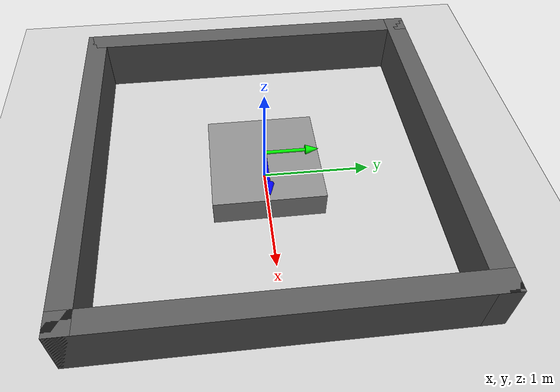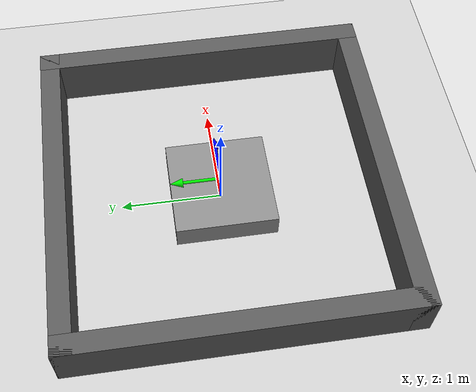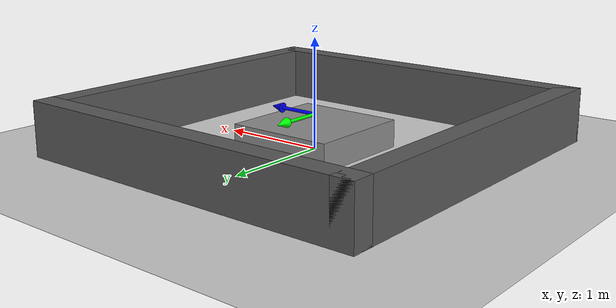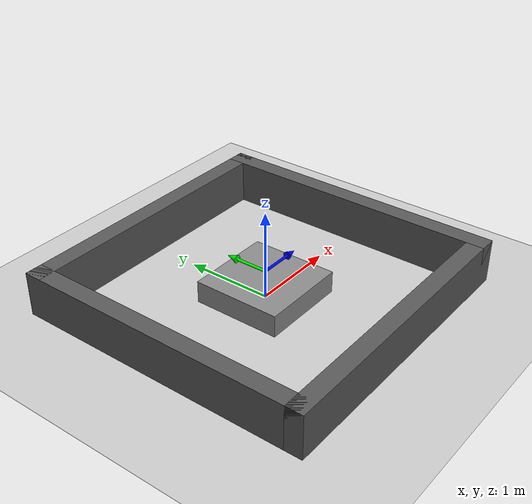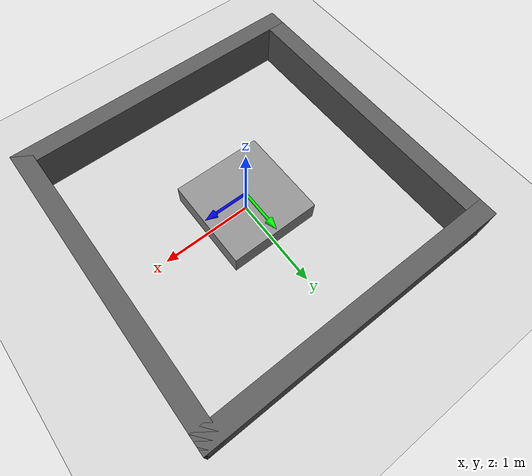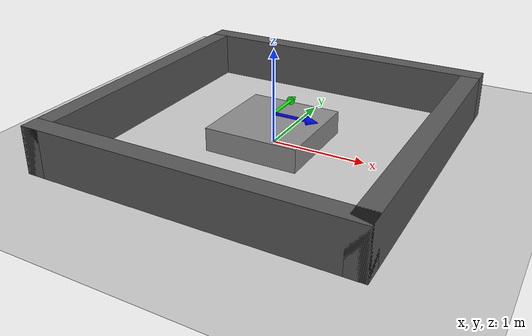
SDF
<?xml version="1.0" ?>
<sdf version="1.8">
  <world name="bell_world">

    <!-- Physics -->
    <physics name="1ms" type="ignored">
      <max_step_size>0.001</max_step_size>
      <real_time_factor>1.0</real_time_factor>
    </physics>

    <!-- Gazebo systems -->
    <plugin filename="gz-sim-physics-system" name="gz::sim::systems::Physics"/>
    <plugin filename="gz-sim-user-commands-system" name="gz::sim::systems::UserCommands"/>
    <plugin filename="gz-sim-scene-broadcaster-system" name="gz::sim::systems::SceneBroadcaster"/>
    <plugin filename="gz-sim-sensors-system" name="gz::sim::systems::Sensors"/>
    <plugin filename="gz-sim-contact-system" name="gz::sim::systems::Contact"/>

    <!-- Light -->
    <light type="directional" name="sun">
      <cast_shadows>true</cast_shadows>
      <pose>0 0 10 0 0 0</pose>
      <diffuse>0.8 0.8 0.8 1</diffuse>
      <specular>0.2 0.2 0.2 1</specular>
      <attenuation>
        <range>1000</range>
        <constant>0.9</constant>
        <linear>0.01</linear>
        <quadratic>0.001</quadratic>
      </attenuation>
      <direction>-0.5 0.1 -0.9</direction>
    </light>

    <!-- Ground -->
    <model name="ground_plane">
      <static>true</static>
      <link name="link">
        <collision name="collision">
          <geometry>
            <plane>
              <normal>0 0 1</normal>
              <size>20 20</size>
            </plane>
          </geometry>
        </collision>
        <visual name="visual">
          <geometry>
            <plane>
              <normal>0 0 1</normal>
              <size>20 20</size>
            </plane>
          </geometry>
          <material>
            <ambient>0.8 0.8 0.8 1</ambient>
            <diffuse>0.8 0.8 0.8 1</diffuse>
          </material>
        </visual>
      </link>
    </model>

    <!-- Outer square walls: inside roughly from -1.5 to 1.5 -->
    <model name="north_wall">
      <static>true</static>
      <pose>0 1.6 0.25 0 0 0</pose>
      <link name="link">
        <collision name="collision"><geometry><box><size>3.4 0.2 0.5</size></box></geometry></collision>
        <visual name="visual"><geometry><box><size>3.4 0.2 0.5</size></box></geometry><material><ambient>0.35 0.35 0.35 1</ambient><diffuse>0.35 0.35 0.35 1</diffuse></material></visual>
      </link>
    </model>

    <model name="south_wall">
      <static>true</static>
      <pose>0 -1.6 0.25 0 0 0</pose>
      <link name="link">
        <collision name="collision"><geometry><box><size>3.4 0.2 0.5</size></box></geometry></collision>
        <visual name="visual"><geometry><box><size>3.4 0.2 0.5</size></box></geometry><material><ambient>0.35 0.35 0.35 1</ambient><diffuse>0.35 0.35 0.35 1</diffuse></material></visual>
      </link>
    </model>

    <model name="east_wall">
      <static>true</static>
      <pose>1.6 0 0.25 0 0 0</pose>
      <link name="link">
        <collision name="collision"><geometry><box><size>0.2 3.4 0.5</size></box></geometry></collision>
        <visual name="visual"><geometry><box><size>0.2 3.4 0.5</size></box></geometry><material><ambient>0.35 0.35 0.35 1</ambient><diffuse>0.35 0.35 0.35 1</diffuse></material></visual>
      </link>
    </model>

    <model name="west_wall">
      <static>true</static>
      <pose>-1.6 0 0.25 0 0 0</pose>
      <link name="link">
        <collision name="collision"><geometry><box><size>0.2 3.4 0.5</size></box></geometry></collision>
        <visual name="visual"><geometry><box><size>0.2 3.4 0.5</size></box></geometry><material><ambient>0.35 0.35 0.35 1</ambient><diffuse>0.35 0.35 0.35 1</diffuse></material></visual>
      </link>
    </model>

    <!-- Center 1m x 1m obstacle -->
    <model name="center_square_obstacle">
      <static>true</static>
      <pose>0 0 0.125 0 0 0</pose>
      <link name="link">
        <collision name="collision">
          <geometry>
            <box>
              <size>1.0 1.0 0.25</size>
            </box>
          </geometry>
        </collision>
        <visual name="visual">
          <geometry>
            <box>
              <size>1.0 1.0 0.25</size>
            </box>
          </geometry>
          <material>
            <ambient>0.55 0.55 0.55 1</ambient>
            <diffuse>0.55 0.55 0.55 1</diffuse>
          </material>
        </visual>
      </link>
    </model>

    <!-- TurtleBot is intentionally NOT included here.
         Use your original TurtleBot launch/spawn method and set its spawn pose to:
         x=1.2, y=-1.2, z=0.01, yaw=0
    -->
        <!-- Axis arrows at world origin -->
    <!-- +X direction: 1m blue arrow -->
        <!-- Axis arrows on top of center obstacle -->
    <!-- +X direction: 0.5m blue arrow -->
    <model name="x_axis_blue_arrow">
      <static>true</static>

      <!-- shaft -->
      <link name="x_shaft">
        <pose>0.1875 0 0.32 0 1.5708 0</pose>
        <visual name="visual">
          <geometry>
            <cylinder>
              <radius>0.015</radius>
              <length>0.375</length>
            </cylinder>
          </geometry>
          <material>
            <ambient>0 0 1 1</ambient>
            <diffuse>0 0 1 1</diffuse>
          </material>
        </visual>
      </link>

      <!-- arrow head -->
      <link name="x_head">
        <pose>0.4375 0 0.32 0 1.5708 0</pose>
        <visual name="visual">
          <geometry>
            <cone>
              <radius>0.045</radius>
              <length>0.125</length>
            </cone>
          </geometry>
          <material>
            <ambient>0 0 1 1</ambient>
            <diffuse>0 0 1 1</diffuse>
          </material>
        </visual>
      </link>
    </model>

    <!-- +Y direction: 0.5m red arrow -->
    <model name="y_axis_red_arrow">
      <static>true</static>

      <!-- shaft -->
      <link name="y_shaft">
        <pose>0 0.1875 0.32 -1.5708 0 0</pose>
        <visual name="visual">
          <geometry>
            <cylinder>
              <radius>0.015</radius>
              <length>0.375</length>
            </cylinder>
          </geometry>
          <material>
            <ambient>0 1 0 1</ambient>
            <diffuse>0 1 0 1</diffuse>
          </material>
        </visual>
      </link>

      <!-- arrow head -->
      <link name="y_head">
        <pose>0 0.4375 0.32 -1.5708 0 0</pose>
        <visual name="visual">
          <geometry>
            <cone>
              <radius>0.045</radius>
              <length>0.125</length>
            </cone>
          </geometry>
          <material>
            <ambient>0 1 0 1</ambient>
            <diffuse>0 1 0 1</diffuse>
          </material>
        </visual>
      </link>
    </model>

  </world>
</sdf>
